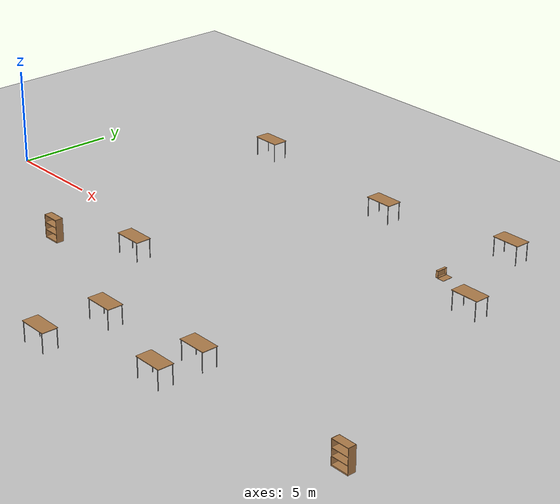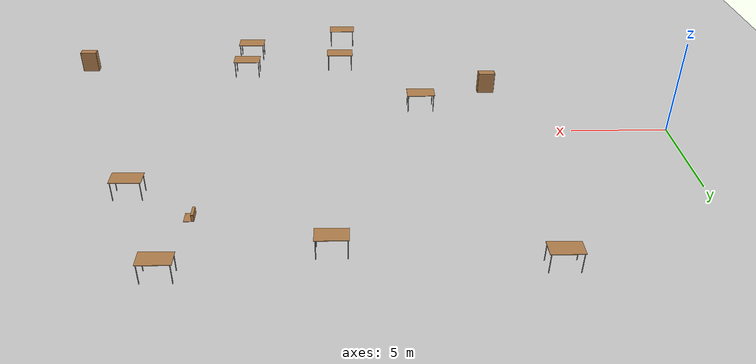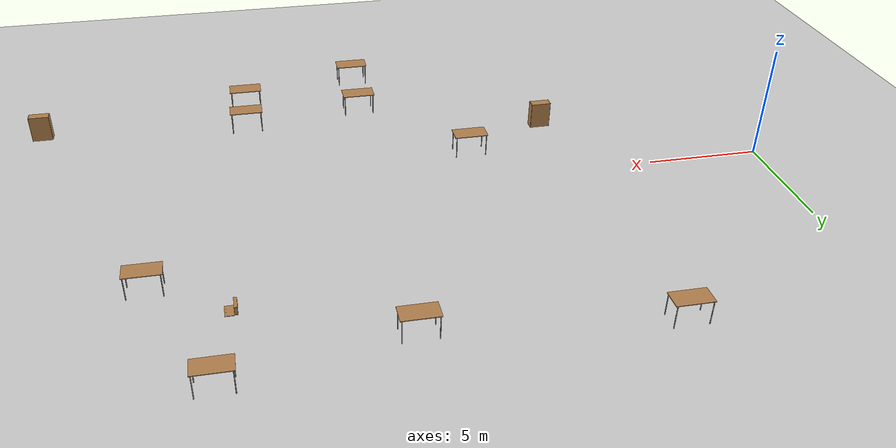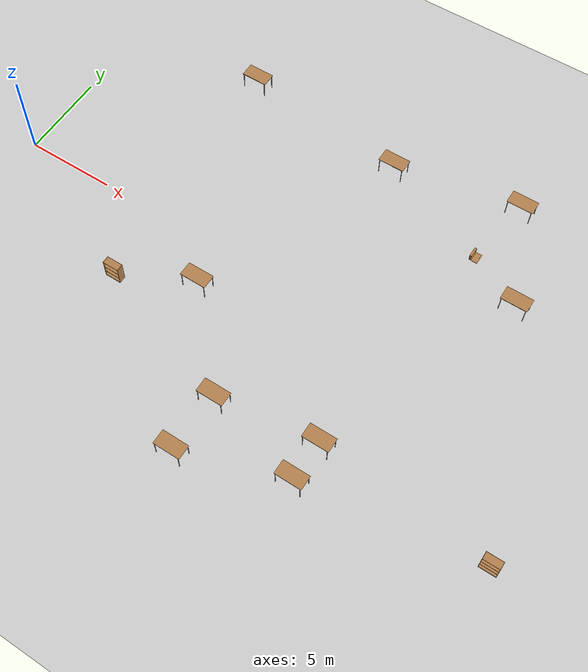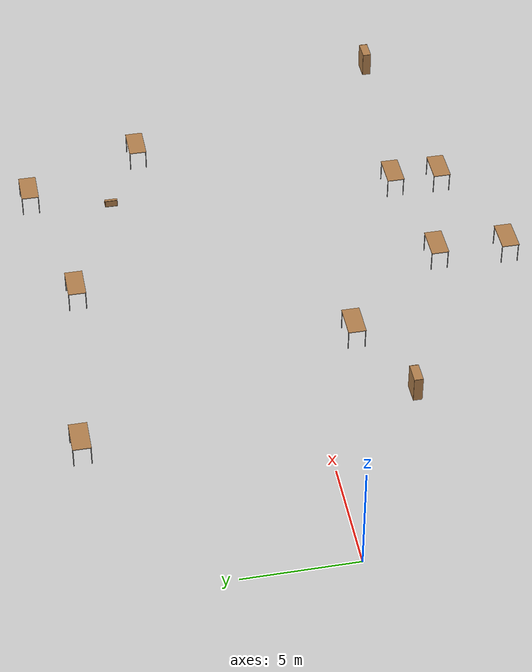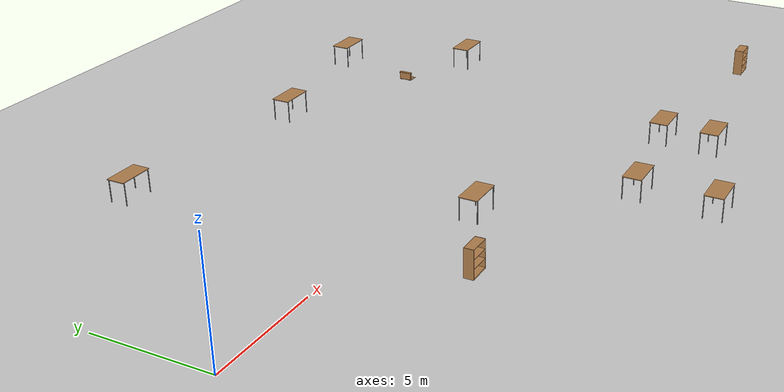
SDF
<sdf version="1.6">
 <world name="default">
  <model name="ground_plane">
   <static>1</static>
   <link name="link">
    <collision name="collision">
     <geometry><plane><normal>0 0 1</normal><size>100 100</size></plane></geometry>
     <surface><friction><ode><mu>100</mu><mu2>50</mu2></ode></friction></surface>
    </collision>
    <visual name="visual">
     <cast_shadows>0</cast_shadows>
     <geometry><plane><normal>0 0 1</normal><size>100 100</size></plane></geometry>
     <material>
      <script><uri>file://media/materials/scripts/gazebo.material</uri><name>Gazebo/Grey</name></script>
     </material>
    </visual>
   </link>
  </model>
  <model name="bookshelf">
   <static>1</static>
   <link name="link">
    <inertial><mass>1</mass></inertial>
    <collision name="back">
     <pose>0 0.005 0.6 0 -0 0</pose>
     <geometry><box><size>0.9 0.01 1.2</size></box></geometry>
    </collision>
    <visual name="visual1">
     <pose>0 0.005 0.6 0 -0 0</pose>
     <geometry><box><size>0.9 0.01 1.2</size></box></geometry>
     <material>
      <script><uri>file://media/materials/scripts/gazebo.material</uri><name>Gazebo/Wood</name></script>
     </material>
    </visual>
    <collision name="left_side">
     <pose>0.45 -0.195 0.6 0 -0 0</pose>
     <geometry><box><size>0.02 0.4 1.2</size></box></geometry>
    </collision>
    <visual name="visual2">
     <pose>0.45 -0.195 0.6 0 -0 0</pose>
     <geometry><box><size>0.02 0.4 1.2</size></box></geometry>
     <material>
      <script><uri>file://media/materials/scripts/gazebo.material</uri><name>Gazebo/Wood</name></script>
     </material>
    </visual>
    <collision name="right_side">
     <pose>-0.45 -0.195 0.6 0 -0 0</pose>
     <geometry><box><size>0.02 0.4 1.2</size></box></geometry>
    </collision>
    <visual name="visual3">
     <pose>-0.45 -0.195 0.6 0 -0 0</pose>
     <geometry><box><size>0.02 0.4 1.2</size></box></geometry>
     <material>
      <script><uri>file://media/materials/scripts/gazebo.material</uri><name>Gazebo/Wood</name></script>
     </material>
    </visual>
    <collision name="bottom">
     <pose>0 -0.195 0.03 0 -0 0</pose>
     <geometry><box><size>0.88 0.4 0.06</size></box></geometry>
    </collision>
    <visual name="visual4">
     <pose>0 -0.195 0.03 0 -0 0</pose>
     <geometry><box><size>0.88 0.4 0.06</size></box></geometry>
     <material>
      <script><uri>file://media/materials/scripts/gazebo.material</uri><name>Gazebo/Wood</name></script>
     </material>
    </visual>
    <collision name="top">
     <pose>0 -0.195 1.19 0 -0 0</pose>
     <geometry><box><size>0.88 0.4 0.02</size></box></geometry>
    </collision>
    <visual name="visual5">
     <pose>0 -0.195 1.19 0 -0 0</pose>
     <geometry><box><size>0.88 0.4 0.02</size></box></geometry>
     <material>
      <script><uri>file://media/materials/scripts/gazebo.material</uri><name>Gazebo/Wood</name></script>
     </material>
    </visual>
    <collision name="low_shelf">
     <pose>0 -0.195 0.43 0 -0 0</pose>
     <geometry><box><size>0.88 0.4 0.02</size></box></geometry>
    </collision>
    <visual name="visual6">
     <pose>0 -0.195 0.43 0 -0 0</pose>
     <geometry><box><size>0.88 0.4 0.02</size></box></geometry>
     <material>
      <script><uri>file://media/materials/scripts/gazebo.material</uri><name>Gazebo/Wood</name></script>
     </material>
    </visual>
    <collision name="high_shelf">
     <pose>0 -0.195 0.8 0 -0 0</pose>
     <geometry><box><size>0.88 0.4 0.02</size></box></geometry>
    </collision>
    <visual name="visual7">
     <pose>0 -0.195 0.8 0 -0 0</pose>
     <geometry><box><size>0.88 0.4 0.02</size></box></geometry>
     <material>
      <script><uri>file://media/materials/scripts/gazebo.material</uri><name>Gazebo/Wood</name></script>
     </material>
    </visual>
   </link>
   <pose>8.91039 -4.11005 0 0 -0 0</pose>
  </model>
  <model name="table">
   <static>1</static>
   <link name="link">
    <collision name="surface">
     <pose>0 0 1 0 -0 0</pose>
     <geometry><box><size>1.5 0.8 0.03</size></box></geometry>
     <surface><friction><ode><mu>0.6</mu><mu2>0.6</mu2></ode></friction></surface>
    </collision>
    <visual name="visual1">
     <pose>0 0 1 0 -0 0</pose>
     <geometry><box><size>1.5 0.8 0.03</size></box></geometry>
     <material>
      <script><uri>file://media/materials/scripts/gazebo.material</uri><name>Gazebo/Wood</name></script>
     </material>
    </visual>
    <collision name="front_left_leg">
     <pose>0.68 0.38 0.5 0 -0 0</pose>
     <geometry><cylinder><radius>0.02</radius><length>1</length></cylinder></geometry>
    </collision>
    <visual name="front_left_leg">
     <pose>0.68 0.38 0.5 0 -0 0</pose>
     <geometry><cylinder><radius>0.02</radius><length>1</length></cylinder></geometry>
     <material>
      <script><uri>file://media/materials/scripts/gazebo.material</uri><name>Gazebo/Grey</name></script>
     </material>
    </visual>
    <collision name="front_right_leg">
     <pose>0.68 -0.38 0.5 0 -0 0</pose>
     <geometry><cylinder><radius>0.02</radius><length>1</length></cylinder></geometry>
    </collision>
    <visual name="front_right_leg">
     <pose>0.68 -0.38 0.5 0 -0 0</pose>
     <geometry><cylinder><radius>0.02</radius><length>1</length></cylinder></geometry>
     <material>
      <script><uri>file://media/materials/scripts/gazebo.material</uri><name>Gazebo/Grey</name></script>
     </material>
    </visual>
    <collision name="back_right_leg">
     <pose>-0.68 -0.38 0.5 0 -0 0</pose>
     <geometry><cylinder><radius>0.02</radius><length>1</length></cylinder></geometry>
    </collision>
    <visual name="back_right_leg">
     <pose>-0.68 -0.38 0.5 0 -0 0</pose>
     <geometry><cylinder><radius>0.02</radius><length>1</length></cylinder></geometry>
     <material>
      <script><uri>file://media/materials/scripts/gazebo.material</uri><name>Gazebo/Grey</name></script>
     </material>
    </visual>
    <collision name="back_left_leg">
     <pose>-0.68 0.38 0.5 0 -0 0</pose>
     <geometry><cylinder><radius>0.02</radius><length>1</length></cylinder></geometry>
    </collision>
    <visual name="back_left_leg">
     <pose>-0.68 0.38 0.5 0 -0 0</pose>
     <geometry><cylinder><radius>0.02</radius><length>1</length></cylinder></geometry>
     <material>
      <script><uri>file://media/materials/scripts/gazebo.material</uri><name>Gazebo/Grey</name></script>
     </material>
    </visual>
   </link>
   <pose>8.01567 10.268 0 0 -0 0</pose>
  </model>
  <model name="table_0">
   <static>1</static>
   <link name="link">
    <collision name="surface">
     <pose>0 0 1 0 -0 0</pose>
     <geometry><box><size>1.5 0.8 0.03</size></box></geometry>
     <surface><friction><ode><mu>0.6</mu><mu2>0.6</mu2></ode></friction></surface>
    </collision>
    <visual name="visual1">
     <pose>0 0 1 0 -0 0</pose>
     <geometry><box><size>1.5 0.8 0.03</size></box></geometry>
     <material>
      <script><uri>file://media/materials/scripts/gazebo.material</uri><name>Gazebo/Wood</name></script>
     </material>
    </visual>
    <collision name="front_left_leg">
     <pose>0.68 0.38 0.5 0 -0 0</pose>
     <geometry><cylinder><radius>0.02</radius><length>1</length></cylinder></geometry>
    </collision>
    <visual name="front_left_leg">
     <pose>0.68 0.38 0.5 0 -0 0</pose>
     <geometry><cylinder><radius>0.02</radius><length>1</length></cylinder></geometry>
     <material>
      <script><uri>file://media/materials/scripts/gazebo.material</uri><name>Gazebo/Grey</name></script>
     </material>
    </visual>
    <collision name="front_right_leg">
     <pose>0.68 -0.38 0.5 0 -0 0</pose>
     <geometry><cylinder><radius>0.02</radius><length>1</length></cylinder></geometry>
    </collision>
    <visual name="front_right_leg">
     <pose>0.68 -0.38 0.5 0 -0 0</pose>
     <geometry><cylinder><radius>0.02</radius><length>1</length></cylinder></geometry>
     <material>
      <script><uri>file://media/materials/scripts/gazebo.material</uri><name>Gazebo/Grey</name></script>
     </material>
    </visual>
    <collision name="back_right_leg">
     <pose>-0.68 -0.38 0.5 0 -0 0</pose>
     <geometry><cylinder><radius>0.02</radius><length>1</length></cylinder></geometry>
    </collision>
    <visual name="back_right_leg">
     <pose>-0.68 -0.38 0.5 0 -0 0</pose>
     <geometry><cylinder><radius>0.02</radius><length>1</length></cylinder></geometry>
     <material>
      <script><uri>file://media/materials/scripts/gazebo.material</uri><name>Gazebo/Grey</name></script>
     </material>
    </visual>
    <collision name="back_left_leg">
     <pose>-0.68 0.38 0.5 0 -0 0</pose>
     <geometry><cylinder><radius>0.02</radius><length>1</length></cylinder></geometry>
    </collision>
    <visual name="back_left_leg">
     <pose>-0.68 0.38 0.5 0 -0 0</pose>
     <geometry><cylinder><radius>0.02</radius><length>1</length></cylinder></geometry>
     <material>
      <script><uri>file://media/materials/scripts/gazebo.material</uri><name>Gazebo/Grey</name></script>
     </material>
    </visual>
   </link>
   <pose>17.5297 9.27634 0 0 -0 0</pose>
  </model>
  <model name="table_1">
   <static>1</static>
   <link name="link">
    <collision name="surface">
     <pose>0 0 1 0 -0 0</pose>
     <geometry><box><size>1.5 0.8 0.03</size></box></geometry>
     <surface><friction><ode><mu>0.6</mu><mu2>0.6</mu2></ode></friction></surface>
    </collision>
    <visual name="visual1">
     <pose>0 0 1 0 -0 0</pose>
     <geometry><box><size>1.5 0.8 0.03</size></box></geometry>
     <material>
      <script><uri>file://media/materials/scripts/gazebo.material</uri><name>Gazebo/Wood</name></script>
     </material>
    </visual>
    <collision name="front_left_leg">
     <pose>0.68 0.38 0.5 0 -0 0</pose>
     <geometry><cylinder><radius>0.02</radius><length>1</length></cylinder></geometry>
    </collision>
    <visual name="front_left_leg">
     <pose>0.68 0.38 0.5 0 -0 0</pose>
     <geometry><cylinder><radius>0.02</radius><length>1</length></cylinder></geometry>
     <material>
      <script><uri>file://media/materials/scripts/gazebo.material</uri><name>Gazebo/Grey</name></script>
     </material>
    </visual>
    <collision name="front_right_leg">
     <pose>0.68 -0.38 0.5 0 -0 0</pose>
     <geometry><cylinder><radius>0.02</radius><length>1</length></cylinder></geometry>
    </collision>
    <visual name="front_right_leg">
     <pose>0.68 -0.38 0.5 0 -0 0</pose>
     <geometry><cylinder><radius>0.02</radius><length>1</length></cylinder></geometry>
     <material>
      <script><uri>file://media/materials/scripts/gazebo.material</uri><name>Gazebo/Grey</name></script>
     </material>
    </visual>
    <collision name="back_right_leg">
     <pose>-0.68 -0.38 0.5 0 -0 0</pose>
     <geometry><cylinder><radius>0.02</radius><length>1</length></cylinder></geometry>
    </collision>
    <visual name="back_right_leg">
     <pose>-0.68 -0.38 0.5 0 -0 0</pose>
     <geometry><cylinder><radius>0.02</radius><length>1</length></cylinder></geometry>
     <material>
      <script><uri>file://media/materials/scripts/gazebo.material</uri><name>Gazebo/Grey</name></script>
     </material>
    </visual>
    <collision name="back_left_leg">
     <pose>-0.68 0.38 0.5 0 -0 0</pose>
     <geometry><cylinder><radius>0.02</radius><length>1</length></cylinder></geometry>
    </collision>
    <visual name="back_left_leg">
     <pose>-0.68 0.38 0.5 0 -0 0</pose>
     <geometry><cylinder><radius>0.02</radius><length>1</length></cylinder></geometry>
     <material>
      <script><uri>file://media/materials/scripts/gazebo.material</uri><name>Gazebo/Grey</name></script>
     </material>
    </visual>
   </link>
   <pose>17.2145 -7.28235 0 0 -0 0</pose>
  </model>
  <model name="table_2">
   <static>1</static>
   <link name="link">
    <collision name="surface">
     <pose>0 0 1 0 -0 0</pose>
     <geometry><box><size>1.5 0.8 0.03</size></box></geometry>
     <surface><friction><ode><mu>0.6</mu><mu2>0.6</mu2></ode></friction></surface>
    </collision>
    <visual name="visual1">
     <pose>0 0 1 0 -0 0</pose>
     <geometry><box><size>1.5 0.8 0.03</size></box></geometry>
     <material>
      <script><uri>file://media/materials/scripts/gazebo.material</uri><name>Gazebo/Wood</name></script>
     </material>
    </visual>
    <collision name="front_left_leg">
     <pose>0.68 0.38 0.5 0 -0 0</pose>
     <geometry><cylinder><radius>0.02</radius><length>1</length></cylinder></geometry>
    </collision>
    <visual name="front_left_leg">
     <pose>0.68 0.38 0.5 0 -0 0</pose>
     <geometry><cylinder><radius>0.02</radius><length>1</length></cylinder></geometry>
     <material>
      <script><uri>file://media/materials/scripts/gazebo.material</uri><name>Gazebo/Grey</name></script>
     </material>
    </visual>
    <collision name="front_right_leg">
     <pose>0.68 -0.38 0.5 0 -0 0</pose>
     <geometry><cylinder><radius>0.02</radius><length>1</length></cylinder></geometry>
    </collision>
    <visual name="front_right_leg">
     <pose>0.68 -0.38 0.5 0 -0 0</pose>
     <geometry><cylinder><radius>0.02</radius><length>1</length></cylinder></geometry>
     <material>
      <script><uri>file://media/materials/scripts/gazebo.material</uri><name>Gazebo/Grey</name></script>
     </material>
    </visual>
    <collision name="back_right_leg">
     <pose>-0.68 -0.38 0.5 0 -0 0</pose>
     <geometry><cylinder><radius>0.02</radius><length>1</length></cylinder></geometry>
    </collision>
    <visual name="back_right_leg">
     <pose>-0.68 -0.38 0.5 0 -0 0</pose>
     <geometry><cylinder><radius>0.02</radius><length>1</length></cylinder></geometry>
     <material>
      <script><uri>file://media/materials/scripts/gazebo.material</uri><name>Gazebo/Grey</name></script>
     </material>
    </visual>
    <collision name="back_left_leg">
     <pose>-0.68 0.38 0.5 0 -0 0</pose>
     <geometry><cylinder><radius>0.02</radius><length>1</length></cylinder></geometry>
    </collision>
    <visual name="back_left_leg">
     <pose>-0.68 0.38 0.5 0 -0 0</pose>
     <geometry><cylinder><radius>0.02</radius><length>1</length></cylinder></geometry>
     <material>
      <script><uri>file://media/materials/scripts/gazebo.material</uri><name>Gazebo/Grey</name></script>
     </material>
    </visual>
   </link>
   <pose>17.0961 -10.5556 0 0 -0 0</pose>
  </model>
  <model name="table_3">
   <static>1</static>
   <link name="link">
    <collision name="surface">
     <pose>0 0 1 0 -0 0</pose>
     <geometry><box><size>1.5 0.8 0.03</size></box></geometry>
     <surface><friction><ode><mu>0.6</mu><mu2>0.6</mu2></ode></friction></surface>
    </collision>
    <visual name="visual1">
     <pose>0 0 1 0 -0 0</pose>
     <geometry><box><size>1.5 0.8 0.03</size></box></geometry>
     <material>
      <script><uri>file://media/materials/scripts/gazebo.material</uri><name>Gazebo/Wood</name></script>
     </material>
    </visual>
    <collision name="front_left_leg">
     <pose>0.68 0.38 0.5 0 -0 0</pose>
     <geometry><cylinder><radius>0.02</radius><length>1</length></cylinder></geometry>
    </collision>
    <visual name="front_left_leg">
     <pose>0.68 0.38 0.5 0 -0 0</pose>
     <geometry><cylinder><radius>0.02</radius><length>1</length></cylinder></geometry>
     <material>
      <script><uri>file://media/materials/scripts/gazebo.material</uri><name>Gazebo/Grey</name></script>
     </material>
    </visual>
    <collision name="front_right_leg">
     <pose>0.68 -0.38 0.5 0 -0 0</pose>
     <geometry><cylinder><radius>0.02</radius><length>1</length></cylinder></geometry>
    </collision>
    <visual name="front_right_leg">
     <pose>0.68 -0.38 0.5 0 -0 0</pose>
     <geometry><cylinder><radius>0.02</radius><length>1</length></cylinder></geometry>
     <material>
      <script><uri>file://media/materials/scripts/gazebo.material</uri><name>Gazebo/Grey</name></script>
     </material>
    </visual>
    <collision name="back_right_leg">
     <pose>-0.68 -0.38 0.5 0 -0 0</pose>
     <geometry><cylinder><radius>0.02</radius><length>1</length></cylinder></geometry>
    </collision>
    <visual name="back_right_leg">
     <pose>-0.68 -0.38 0.5 0 -0 0</pose>
     <geometry><cylinder><radius>0.02</radius><length>1</length></cylinder></geometry>
     <material>
      <script><uri>file://media/materials/scripts/gazebo.material</uri><name>Gazebo/Grey</name></script>
     </material>
    </visual>
    <collision name="back_left_leg">
     <pose>-0.68 0.38 0.5 0 -0 0</pose>
     <geometry><cylinder><radius>0.02</radius><length>1</length></cylinder></geometry>
    </collision>
    <visual name="back_left_leg">
     <pose>-0.68 0.38 0.5 0 -0 0</pose>
     <geometry><cylinder><radius>0.02</radius><length>1</length></cylinder></geometry>
     <material>
      <script><uri>file://media/materials/scripts/gazebo.material</uri><name>Gazebo/Grey</name></script>
     </material>
    </visual>
   </link>
   <pose>22.5984 -8.7231 0 0 -0 0</pose>
  </model>
  <model name="table_4">
   <static>1</static>
   <link name="link">
    <collision name="surface">
     <pose>0 0 1 0 -0 0</pose>
     <geometry><box><size>1.5 0.8 0.03</size></box></geometry>
     <surface><friction><ode><mu>0.6</mu><mu2>0.6</mu2></ode></friction></surface>
    </collision>
    <visual name="visual1">
     <pose>0 0 1 0 -0 0</pose>
     <geometry><box><size>1.5 0.8 0.03</size></box></geometry>
     <material>
      <script><uri>file://media/materials/scripts/gazebo.material</uri><name>Gazebo/Wood</name></script>
     </material>
    </visual>
    <collision name="front_left_leg">
     <pose>0.68 0.38 0.5 0 -0 0</pose>
     <geometry><cylinder><radius>0.02</radius><length>1</length></cylinder></geometry>
    </collision>
    <visual name="front_left_leg">
     <pose>0.68 0.38 0.5 0 -0 0</pose>
     <geometry><cylinder><radius>0.02</radius><length>1</length></cylinder></geometry>
     <material>
      <script><uri>file://media/materials/scripts/gazebo.material</uri><name>Gazebo/Grey</name></script>
     </material>
    </visual>
    <collision name="front_right_leg">
     <pose>0.68 -0.38 0.5 0 -0 0</pose>
     <geometry><cylinder><radius>0.02</radius><length>1</length></cylinder></geometry>
    </collision>
    <visual name="front_right_leg">
     <pose>0.68 -0.38 0.5 0 -0 0</pose>
     <geometry><cylinder><radius>0.02</radius><length>1</length></cylinder></geometry>
     <material>
      <script><uri>file://media/materials/scripts/gazebo.material</uri><name>Gazebo/Grey</name></script>
     </material>
    </visual>
    <collision name="back_right_leg">
     <pose>-0.68 -0.38 0.5 0 -0 0</pose>
     <geometry><cylinder><radius>0.02</radius><length>1</length></cylinder></geometry>
    </collision>
    <visual name="back_right_leg">
     <pose>-0.68 -0.38 0.5 0 -0 0</pose>
     <geometry><cylinder><radius>0.02</radius><length>1</length></cylinder></geometry>
     <material>
      <script><uri>file://media/materials/scripts/gazebo.material</uri><name>Gazebo/Grey</name></script>
     </material>
    </visual>
    <collision name="back_left_leg">
     <pose>-0.68 0.38 0.5 0 -0 0</pose>
     <geometry><cylinder><radius>0.02</radius><length>1</length></cylinder></geometry>
    </collision>
    <visual name="back_left_leg">
     <pose>-0.68 0.38 0.5 0 -0 0</pose>
     <geometry><cylinder><radius>0.02</radius><length>1</length></cylinder></geometry>
     <material>
      <script><uri>file://media/materials/scripts/gazebo.material</uri><name>Gazebo/Grey</name></script>
     </material>
    </visual>
   </link>
   <pose>22.669 -6.5013 0 0 -0 0</pose>
  </model>
  <model name="bookshelf_12">
   <static>1</static>
   <link name="link">
    <inertial><mass>1</mass></inertial>
    <collision name="back">
     <pose>0 0.005 0.6 0 -0 0</pose>
     <geometry><box><size>0.9 0.01 1.2</size></box></geometry>
    </collision>
    <visual name="visual1">
     <pose>0 0.005 0.6 0 -0 0</pose>
     <geometry><box><size>0.9 0.01 1.2</size></box></geometry>
     <material>
      <script><uri>file://media/materials/scripts/gazebo.material</uri><name>Gazebo/Wood</name></script>
     </material>
    </visual>
    <collision name="left_side">
     <pose>0.45 -0.195 0.6 0 -0 0</pose>
     <geometry><box><size>0.02 0.4 1.2</size></box></geometry>
    </collision>
    <visual name="visual2">
     <pose>0.45 -0.195 0.6 0 -0 0</pose>
     <geometry><box><size>0.02 0.4 1.2</size></box></geometry>
     <material>
      <script><uri>file://media/materials/scripts/gazebo.material</uri><name>Gazebo/Wood</name></script>
     </material>
    </visual>
    <collision name="right_side">
     <pose>-0.45 -0.195 0.6 0 -0 0</pose>
     <geometry><box><size>0.02 0.4 1.2</size></box></geometry>
    </collision>
    <visual name="visual3">
     <pose>-0.45 -0.195 0.6 0 -0 0</pose>
     <geometry><box><size>0.02 0.4 1.2</size></box></geometry>
     <material>
      <script><uri>file://media/materials/scripts/gazebo.material</uri><name>Gazebo/Wood</name></script>
     </material>
    </visual>
    <collision name="bottom">
     <pose>0 -0.195 0.03 0 -0 0</pose>
     <geometry><box><size>0.88 0.4 0.06</size></box></geometry>
    </collision>
    <visual name="visual4">
     <pose>0 -0.195 0.03 0 -0 0</pose>
     <geometry><box><size>0.88 0.4 0.06</size></box></geometry>
     <material>
      <script><uri>file://media/materials/scripts/gazebo.material</uri><name>Gazebo/Wood</name></script>
     </material>
    </visual>
    <collision name="top">
     <pose>0 -0.195 1.19 0 -0 0</pose>
     <geometry><box><size>0.88 0.4 0.02</size></box></geometry>
    </collision>
    <visual name="visual5">
     <pose>0 -0.195 1.19 0 -0 0</pose>
     <geometry><box><size>0.88 0.4 0.02</size></box></geometry>
     <material>
      <script><uri>file://media/materials/scripts/gazebo.material</uri><name>Gazebo/Wood</name></script>
     </material>
    </visual>
    <collision name="low_shelf">
     <pose>0 -0.195 0.43 0 -0 0</pose>
     <geometry><box><size>0.88 0.4 0.02</size></box></geometry>
    </collision>
    <visual name="visual6">
     <pose>0 -0.195 0.43 0 -0 0</pose>
     <geometry><box><size>0.88 0.4 0.02</size></box></geometry>
     <material>
      <script><uri>file://media/materials/scripts/gazebo.material</uri><name>Gazebo/Wood</name></script>
     </material>
    </visual>
    <collision name="high_shelf">
     <pose>0 -0.195 0.8 0 -0 0</pose>
     <geometry><box><size>0.88 0.4 0.02</size></box></geometry>
    </collision>
    <visual name="visual7">
     <pose>0 -0.195 0.8 0 -0 0</pose>
     <geometry><box><size>0.88 0.4 0.02</size></box></geometry>
     <material>
      <script><uri>file://media/materials/scripts/gazebo.material</uri><name>Gazebo/Wood</name></script>
     </material>
    </visual>
   </link>
   <pose>32.1284 -7.09392 0 0 -0 0</pose>
  </model>
  <model name="wooden_case_1">
   <link name="base">
    <pose>0 0 0.024 0 -0 0</pose>
    <inertial>
     <pose>-0.022184 0 0.171592 0 -0 0</pose>
     <mass>3.96264</mass>
     <inertia>
      <ixx>0.213536</ixx>
      <ixy>0</ixy>
      <ixz>0.000779377</ixz>
      <iyy>0.0708943</iyy>
      <iyz>0</iyz>
      <izz>0.154604</izz>
     </inertia>
    </inertial>
    <collision name="collision_back">
     <pose>-0.053975 0 0.1778 0 -0 0</pose>
     <geometry><box><size>0.01905 0.5461 0.3175</size></box></geometry>
     <surface>
      <contact>
       <poissons_ratio>0.347</poissons_ratio>
       <elastic_modulus>8.8e+09</elastic_modulus>
       <ode><kp>100000</kp><kd>100</kd><max_vel>100</max_vel><min_depth>0.001</min_depth></ode>
      </contact>
      <friction>
       <torsional>
        <coefficient>1</coefficient>
        <use_patch_radius>0</use_patch_radius>
        <surface_radius>0.01</surface_radius>
       </torsional>
      </friction>
     </surface>
    </collision>
    <visual name="visual_back">
     <pose>-0.053975 0 0.1778 0 -0 0</pose>
     <geometry><box><size>0.01905 0.5461 0.3175</size></box></geometry>
     <material>
      <script><uri>file://media/materials/scripts/gazebo.material</uri><name>Gazebo/Wood</name></script>
     </material>
    </visual>
    <collision name="collision_bottom">
     <pose>0 0 0.009525 0 -0 0</pose>
     <geometry><box><size>0.127 0.5842 0.01905</size></box></geometry>
     <surface>
      <contact>
       <poissons_ratio>0.347</poissons_ratio>
       <elastic_modulus>8.8e+09</elastic_modulus>
       <ode><kp>100000</kp><kd>100</kd><max_vel>100</max_vel><min_depth>0.001</min_depth></ode>
      </contact>
      <friction>
       <torsional>
        <coefficient>1</coefficient>
        <use_patch_radius>0</use_patch_radius>
        <surface_radius>0.01</surface_radius>
       </torsional>
      </friction>
     </surface>
    </collision>
    <visual name="visual_bottom">
     <pose>0 0 0.009525 0 -0 0</pose>
     <geometry><box><size>0.127 0.5842 0.01905</size></box></geometry>
     <material>
      <script><uri>file://media/materials/scripts/gazebo.material</uri><name>Gazebo/Wood</name></script>
     </material>
    </visual>
    <collision name="collision_top">
     <pose>0 0 0.346075 0 -0 0</pose>
     <geometry><box><size>0.127 0.5842 0.01905</size></box></geometry>
     <surface>
      <contact>
       <poissons_ratio>0.347</poissons_ratio>
       <elastic_modulus>8.8e+09</elastic_modulus>
       <ode><kp>100000</kp><kd>100</kd><max_vel>100</max_vel><min_depth>0.001</min_depth></ode>
      </contact>
      <friction>
       <torsional>
        <coefficient>1</coefficient>
        <use_patch_radius>0</use_patch_radius>
        <surface_radius>0.01</surface_radius>
       </torsional>
      </friction>
     </surface>
    </collision>
    <visual name="visual_top">
     <pose>0 0 0.346075 0 -0 0</pose>
     <geometry><box><size>0.127 0.5842 0.01905</size></box></geometry>
     <material>
      <script><uri>file://media/materials/scripts/gazebo.material</uri><name>Gazebo/Wood</name></script>
     </material>
    </visual>
    <collision name="collision_left">
     <pose>0 -0.282575 0.1778 0 -0 0</pose>
     <geometry><box><size>0.127 0.01905 0.3175</size></box></geometry>
     <surface>
      <contact>
       <poissons_ratio>0.347</poissons_ratio>
       <elastic_modulus>8.8e+09</elastic_modulus>
       <ode><kp>100000</kp><kd>100</kd><max_vel>100</max_vel><min_depth>0.001</min_depth></ode>
      </contact>
      <friction>
       <torsional>
        <coefficient>1</coefficient>
        <use_patch_radius>0</use_patch_radius>
        <surface_radius>0.01</surface_radius>
       </torsional>
      </friction>
     </surface>
    </collision>
    <visual name="visual_left">
     <pose>0 -0.282575 0.1778 0 -0 0</pose>
     <geometry><box><size>0.127 0.01905 0.3175</size></box></geometry>
     <material>
      <script><uri>file://media/materials/scripts/gazebo.material</uri><name>Gazebo/Wood</name></script>
     </material>
    </visual>
    <collision name="collision_right">
     <pose>0 0.282575 0.1778 0 -0 0</pose>
     <geometry><box><size>0.127 0.01905 0.3175</size></box></geometry>
     <surface>
      <contact>
       <poissons_ratio>0.347</poissons_ratio>
       <elastic_modulus>8.8e+09</elastic_modulus>
       <ode><kp>100000</kp><kd>100</kd><max_vel>100</max_vel><min_depth>0.001</min_depth></ode>
      </contact>
      <friction>
       <torsional>
        <coefficient>1</coefficient>
        <use_patch_radius>0</use_patch_radius>
        <surface_radius>0.01</surface_radius>
       </torsional>
      </friction>
     </surface>
    </collision>
    <visual name="visual_right">
     <pose>0 0.282575 0.1778 0 -0 0</pose>
     <geometry><box><size>0.127 0.01905 0.3175</size></box></geometry>
     <material>
      <script><uri>file://media/materials/scripts/gazebo.material</uri><name>Gazebo/Wood</name></script>
     </material>
    </visual>
    <collision name="collision_block_left">
     <pose>0.0095 -0.2151 -0.012 0 -0 0</pose>
     <geometry><box><size>0.108 0.05 0.024</size></box></geometry>
     <surface>
      <contact>
       <poissons_ratio>0.347</poissons_ratio>
       <elastic_modulus>8.8e+09</elastic_modulus>
       <ode><kp>100000</kp><kd>100</kd><max_vel>100</max_vel><min_depth>0.001</min_depth></ode>
      </contact>
      <friction>
       <torsional>
        <coefficient>1</coefficient>
        <use_patch_radius>0</use_patch_radius>
        <surface_radius>0.01</surface_radius>
       </torsional>
      </friction>
     </surface>
    </collision>
    <visual name="visual_block_left">
     <pose>0.0095 -0.2151 -0.012 0 -0 0</pose>
     <geometry><box><size>0.108 0.05 0.024</size></box></geometry>
     <material>
      <script><uri>file://media/materials/scripts/gazebo.material</uri><name>Gazebo/Wood</name></script>
     </material>
    </visual>
    <collision name="collision_block_right">
     <pose>0.0095 0.2151 -0.012 0 -0 0</pose>
     <geometry><box><size>0.108 0.05 0.024</size></box></geometry>
     <surface>
      <contact>
       <poissons_ratio>0.347</poissons_ratio>
       <elastic_modulus>8.8e+09</elastic_modulus>
       <ode><kp>100000</kp><kd>100</kd><max_vel>100</max_vel><min_depth>0.001</min_depth></ode>
      </contact>
      <friction>
       <torsional>
        <coefficient>1</coefficient>
        <use_patch_radius>0</use_patch_radius>
        <surface_radius>0.01</surface_radius>
       </torsional>
      </friction>
     </surface>
    </collision>
    <visual name="visual_block_right">
     <pose>0.0095 0.2151 -0.012 0 -0 0</pose>
     <geometry><box><size>0.108 0.05 0.024</size></box></geometry>
     <material>
      <script><uri>file://media/materials/scripts/gazebo.material</uri><name>Gazebo/Wood</name></script>
     </material>
    </visual>
   </link>
   <link name="lid">
    <pose>0.243775 0 0.009525 0 -0 0</pose>
    <inertial>
     <mass>1.97874</mass>
     <inertia>
      <ixx>0.0563367</ixx>
      <ixy>0</ixy>
      <ixz>0</ixz>
      <iyy>0.020911</iyy>
      <iyz>0</iyz>
      <izz>0.0771281</izz>
     </inertia>
    </inertial>
    <collision name="collision">
     <geometry><box><size>0.3556 0.5842 0.01905</size></box></geometry>
     <surface>
      <contact>
       <poissons_ratio>0.347</poissons_ratio>
       <elastic_modulus>8.8e+09</elastic_modulus>
       <ode><kp>100000</kp><kd>100</kd><max_vel>100</max_vel><min_depth>0.001</min_depth></ode>
      </contact>
      <friction>
       <torsional>
        <coefficient>1</coefficient>
        <use_patch_radius>0</use_patch_radius>
        <surface_radius>0.01</surface_radius>
       </torsional>
      </friction>
     </surface>
    </collision>
    <visual name="visual">
     <geometry><box><size>0.3556 0.5842 0.01905</size></box></geometry>
     <material>
      <script><uri>file://media/materials/scripts/gazebo.material</uri><name>Gazebo/Wood</name></script>
     </material>
    </visual>
    <visual name="tee_nut_1">
     <pose>0.122 -0.216 0 0 -0 0</pose>
     <geometry><cylinder><radius>0.00635</radius><length>0.0192405</length></cylinder></geometry>
     <material>
      <script><uri>file://media/materials/scripts/gazebo.material</uri><name>Gazebo/Grey</name></script>
     </material>
    </visual>
    <visual name="tee_nut_2">
     <pose>0.122 -0.088 0 0 -0 0</pose>
     <geometry><cylinder><radius>0.00635</radius><length>0.0192405</length></cylinder></geometry>
     <material>
      <script><uri>file://media/materials/scripts/gazebo.material</uri><name>Gazebo/Grey</name></script>
     </material>
    </visual>
    <visual name="tee_nut_3">
     <pose>0.122 0.088 0 0 -0 0</pose>
     <geometry><cylinder><radius>0.00635</radius><length>0.0192405</length></cylinder></geometry>
     <material>
      <script><uri>file://media/materials/scripts/gazebo.material</uri><name>Gazebo/Grey</name></script>
     </material>
    </visual>
    <visual name="tee_nut_4">
     <pose>0.122 0.216 0 0 -0 0</pose>
     <geometry><cylinder><radius>0.00635</radius><length>0.0192405</length></cylinder></geometry>
     <material>
      <script><uri>file://media/materials/scripts/gazebo.material</uri><name>Gazebo/Grey</name></script>
     </material>
    </visual>
   </link>
   <joint name="lid_hinge" type="revolute">
    <pose>-0.1778 0 0.01905 0 -0 0</pose>
    <parent>base</parent>
    <child>lid</child>
    <axis>
     <xyz>0 1 0</xyz>
     <limit><upper>0.523599</upper><lower>-1.5708</lower></limit>
     <use_parent_model_frame>0</use_parent_model_frame>
     <dynamics><spring_reference>0</spring_reference><spring_stiffness>0</spring_stiffness></dynamics>
    </axis>
   </joint>
   <pose>23.7381 6.84228 -0.001057 0 -0.00043 0</pose>
  </model>
  <model name="table_5">
   <static>1</static>
   <link name="link">
    <collision name="surface">
     <pose>0 0 1 0 -0 0</pose>
     <geometry><box><size>1.5 0.8 0.03</size></box></geometry>
     <surface><friction><ode><mu>0.6</mu><mu2>0.6</mu2></ode></friction></surface>
    </collision>
    <visual name="visual1">
     <pose>0 0 1 0 -0 0</pose>
     <geometry><box><size>1.5 0.8 0.03</size></box></geometry>
     <material>
      <script><uri>file://media/materials/scripts/gazebo.material</uri><name>Gazebo/Wood</name></script>
     </material>
    </visual>
    <collision name="front_left_leg">
     <pose>0.68 0.38 0.5 0 -0 0</pose>
     <geometry><cylinder><radius>0.02</radius><length>1</length></cylinder></geometry>
    </collision>
    <visual name="front_left_leg">
     <pose>0.68 0.38 0.5 0 -0 0</pose>
     <geometry><cylinder><radius>0.02</radius><length>1</length></cylinder></geometry>
     <material>
      <script><uri>file://media/materials/scripts/gazebo.material</uri><name>Gazebo/Grey</name></script>
     </material>
    </visual>
    <collision name="front_right_leg">
     <pose>0.68 -0.38 0.5 0 -0 0</pose>
     <geometry><cylinder><radius>0.02</radius><length>1</length></cylinder></geometry>
    </collision>
    <visual name="front_right_leg">
     <pose>0.68 -0.38 0.5 0 -0 0</pose>
     <geometry><cylinder><radius>0.02</radius><length>1</length></cylinder></geometry>
     <material>
      <script><uri>file://media/materials/scripts/gazebo.material</uri><name>Gazebo/Grey</name></script>
     </material>
    </visual>
    <collision name="back_right_leg">
     <pose>-0.68 -0.38 0.5 0 -0 0</pose>
     <geometry><cylinder><radius>0.02</radius><length>1</length></cylinder></geometry>
    </collision>
    <visual name="back_right_leg">
     <pose>-0.68 -0.38 0.5 0 -0 0</pose>
     <geometry><cylinder><radius>0.02</radius><length>1</length></cylinder></geometry>
     <material>
      <script><uri>file://media/materials/scripts/gazebo.material</uri><name>Gazebo/Grey</name></script>
     </material>
    </visual>
    <collision name="back_left_leg">
     <pose>-0.68 0.38 0.5 0 -0 0</pose>
     <geometry><cylinder><radius>0.02</radius><length>1</length></cylinder></geometry>
    </collision>
    <visual name="back_left_leg">
     <pose>-0.68 0.38 0.5 0 -0 0</pose>
     <geometry><cylinder><radius>0.02</radius><length>1</length></cylinder></geometry>
     <material>
      <script><uri>file://media/materials/scripts/gazebo.material</uri><name>Gazebo/Grey</name></script>
     </material>
    </visual>
   </link>
   <pose>24.5696 10.606 0 0 -0 0</pose>
  </model>
  <model name="table_6">
   <static>1</static>
   <link name="link">
    <collision name="surface">
     <pose>0 0 1 0 -0 0</pose>
     <geometry><box><size>1.5 0.8 0.03</size></box></geometry>
     <surface><friction><ode><mu>0.6</mu><mu2>0.6</mu2></ode></friction></surface>
    </collision>
    <visual name="visual1">
     <pose>0 0 1 0 -0 0</pose>
     <geometry><box><size>1.5 0.8 0.03</size></box></geometry>
     <material>
      <script><uri>file://media/materials/scripts/gazebo.material</uri><name>Gazebo/Wood</name></script>
     </material>
    </visual>
    <collision name="front_left_leg">
     <pose>0.68 0.38 0.5 0 -0 0</pose>
     <geometry><cylinder><radius>0.02</radius><length>1</length></cylinder></geometry>
    </collision>
    <visual name="front_left_leg">
     <pose>0.68 0.38 0.5 0 -0 0</pose>
     <geometry><cylinder><radius>0.02</radius><length>1</length></cylinder></geometry>
     <material>
      <script><uri>file://media/materials/scripts/gazebo.material</uri><name>Gazebo/Grey</name></script>
     </material>
    </visual>
    <collision name="front_right_leg">
     <pose>0.68 -0.38 0.5 0 -0 0</pose>
     <geometry><cylinder><radius>0.02</radius><length>1</length></cylinder></geometry>
    </collision>
    <visual name="front_right_leg">
     <pose>0.68 -0.38 0.5 0 -0 0</pose>
     <geometry><cylinder><radius>0.02</radius><length>1</length></cylinder></geometry>
     <material>
      <script><uri>file://media/materials/scripts/gazebo.material</uri><name>Gazebo/Grey</name></script>
     </material>
    </visual>
    <collision name="back_right_leg">
     <pose>-0.68 -0.38 0.5 0 -0 0</pose>
     <geometry><cylinder><radius>0.02</radius><length>1</length></cylinder></geometry>
    </collision>
    <visual name="back_right_leg">
     <pose>-0.68 -0.38 0.5 0 -0 0</pose>
     <geometry><cylinder><radius>0.02</radius><length>1</length></cylinder></geometry>
     <material>
      <script><uri>file://media/materials/scripts/gazebo.material</uri><name>Gazebo/Grey</name></script>
     </material>
    </visual>
    <collision name="back_left_leg">
     <pose>-0.68 0.38 0.5 0 -0 0</pose>
     <geometry><cylinder><radius>0.02</radius><length>1</length></cylinder></geometry>
    </collision>
    <visual name="back_left_leg">
     <pose>-0.68 0.38 0.5 0 -0 0</pose>
     <geometry><cylinder><radius>0.02</radius><length>1</length></cylinder></geometry>
     <material>
      <script><uri>file://media/materials/scripts/gazebo.material</uri><name>Gazebo/Grey</name></script>
     </material>
    </visual>
   </link>
   <pose>26.9852 5.17115 0 0 -0 0</pose>
  </model>
  <model name="table_11_clone_3">
   <static>1</static>
   <link name="link">
    <collision name="surface">
     <pose>0 0 1 0 -0 0</pose>
     <geometry><box><size>1.5 0.8 0.03</size></box></geometry>
     <surface><friction><ode><mu>0.6</mu><mu2>0.6</mu2></ode></friction></surface>
    </collision>
    <visual name="visual1">
     <pose>0 0 1 0 -0 0</pose>
     <geometry><box><size>1.5 0.8 0.03</size></box></geometry>
     <material>
      <script><uri>file://media/materials/scripts/gazebo.material</uri><name>Gazebo/Wood</name></script>
     </material>
    </visual>
    <collision name="front_left_leg">
     <pose>0.68 0.38 0.5 0 -0 0</pose>
     <geometry><cylinder><radius>0.02</radius><length>1</length></cylinder></geometry>
    </collision>
    <visual name="front_left_leg">
     <pose>0.68 0.38 0.5 0 -0 0</pose>
     <geometry><cylinder><radius>0.02</radius><length>1</length></cylinder></geometry>
     <material>
      <script><uri>file://media/materials/scripts/gazebo.material</uri><name>Gazebo/Grey</name></script>
     </material>
    </visual>
    <collision name="front_right_leg">
     <pose>0.68 -0.38 0.5 0 -0 0</pose>
     <geometry><cylinder><radius>0.02</radius><length>1</length></cylinder></geometry>
    </collision>
    <visual name="front_right_leg">
     <pose>0.68 -0.38 0.5 0 -0 0</pose>
     <geometry><cylinder><radius>0.02</radius><length>1</length></cylinder></geometry>
     <material>
      <script><uri>file://media/materials/scripts/gazebo.material</uri><name>Gazebo/Grey</name></script>
     </material>
    </visual>
    <collision name="back_right_leg">
     <pose>-0.68 -0.38 0.5 0 -0 0</pose>
     <geometry><cylinder><radius>0.02</radius><length>1</length></cylinder></geometry>
    </collision>
    <visual name="back_right_leg">
     <pose>-0.68 -0.38 0.5 0 -0 0</pose>
     <geometry><cylinder><radius>0.02</radius><length>1</length></cylinder></geometry>
     <material>
      <script><uri>file://media/materials/scripts/gazebo.material</uri><name>Gazebo/Grey</name></script>
     </material>
    </visual>
    <collision name="back_left_leg">
     <pose>-0.68 0.38 0.5 0 -0 0</pose>
     <geometry><cylinder><radius>0.02</radius><length>1</length></cylinder></geometry>
    </collision>
    <visual name="back_left_leg">
     <pose>-0.68 0.38 0.5 0 -0 0</pose>
     <geometry><cylinder><radius>0.02</radius><length>1</length></cylinder></geometry>
     <material>
      <script><uri>file://media/materials/scripts/gazebo.material</uri><name>Gazebo/Grey</name></script>
     </material>
    </visual>
   </link>
   <pose>12.8008 -2.43684 0 0 -0 0</pose>
  </model>
 </world>
</sdf>
